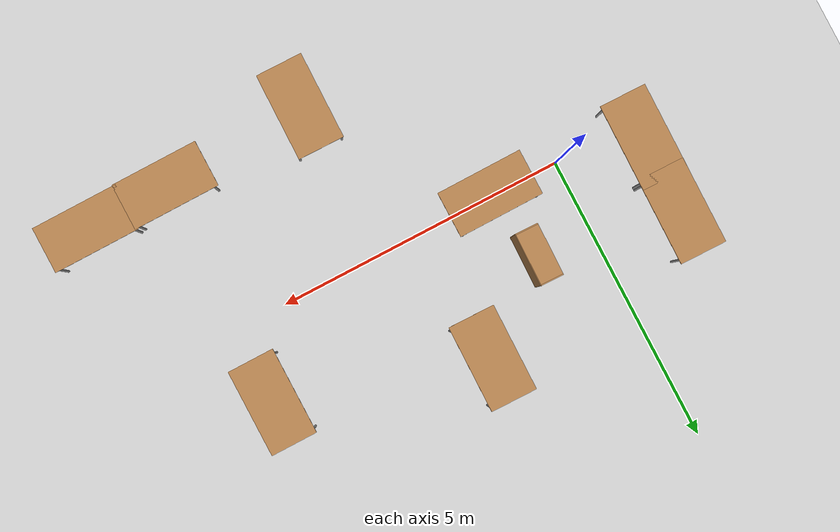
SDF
<sdf version="1.6">
 <world name="default">
  <light name="sun" type="directional">
   <pose>0 0 10 0 -0 0</pose>
   <diffuse>0.8 0.8 0.8 1</diffuse>
   <specular>0.2 0.2 0.2 1</specular>
   <attenuation>
    <range>1000</range>
    <constant>0.9</constant>
    <linear>0.01</linear>
    <quadratic>0.001</quadratic>
   </attenuation>
   <direction>-0.5 0.1 -0.9</direction>
  </light>
  <model name="ground_plane">
   <static>1</static>
   <link name="link">
    <collision name="collision">
     <geometry><plane><normal>0 0 1</normal><size>100 100</size></plane></geometry>
     <surface><friction><ode><mu>100</mu><mu2>50</mu2></ode></friction></surface>
    </collision>
    <visual name="visual">
     <cast_shadows>0</cast_shadows>
     <geometry><plane><normal>0 0 1</normal><size>100 100</size></plane></geometry>
     <material>
      <script><uri>file://media/materials/scripts/gazebo.material</uri><name>Gazebo/Grey</name></script>
     </material>
    </visual>
   </link>
  </model>
  <gravity>0 0 -9.8</gravity>
  <magnetic_field>6e-06 2.3e-05 -4.2e-05</magnetic_field>
  <atmosphere type="adiabatic"/>
  <physics name="default_physics" default="0" type="ode">
   <max_step_size>0.001</max_step_size>
   <real_time_factor>1</real_time_factor>
   <real_time_update_rate>1000</real_time_update_rate>
  </physics>
  <scene><ambient>0.4 0.4 0.4 1</ambient><background>0.7 0.7 0.7 1</background><shadows>1</shadows></scene>
  <spherical_coordinates>
   <surface_model>EARTH_WGS84</surface_model>
   <latitude_deg>0</latitude_deg>
   <longitude_deg>0</longitude_deg>
   <elevation>0</elevation>
   <heading_deg>0</heading_deg>
  </spherical_coordinates>
  <model name="table">
   <static>1</static>
   <link name="link">
    <collision name="surface">
     <pose>0 0 1 0 -0 0</pose>
     <geometry><box><size>1.5 0.8 0.03</size></box></geometry>
     <surface><friction><ode><mu>0.6</mu><mu2>0.6</mu2></ode></friction></surface>
    </collision>
    <visual name="visual1">
     <pose>0 0 1 0 -0 0</pose>
     <geometry><box><size>1.5 0.8 0.03</size></box></geometry>
     <material>
      <script><uri>file://media/materials/scripts/gazebo.material</uri><name>Gazebo/Wood</name></script>
     </material>
    </visual>
    <collision name="front_left_leg">
     <pose>0.68 0.38 0.5 0 -0 0</pose>
     <geometry><cylinder><radius>0.02</radius><length>1</length></cylinder></geometry>
    </collision>
    <visual name="front_left_leg">
     <pose>0.68 0.38 0.5 0 -0 0</pose>
     <geometry><cylinder><radius>0.02</radius><length>1</length></cylinder></geometry>
     <material>
      <script><uri>file://media/materials/scripts/gazebo.material</uri><name>Gazebo/Grey</name></script>
     </material>
    </visual>
    <collision name="front_right_leg">
     <pose>0.68 -0.38 0.5 0 -0 0</pose>
     <geometry><cylinder><radius>0.02</radius><length>1</length></cylinder></geometry>
    </collision>
    <visual name="front_right_leg">
     <pose>0.68 -0.38 0.5 0 -0 0</pose>
     <geometry><cylinder><radius>0.02</radius><length>1</length></cylinder></geometry>
     <material>
      <script><uri>file://media/materials/scripts/gazebo.material</uri><name>Gazebo/Grey</name></script>
     </material>
    </visual>
    <collision name="back_right_leg">
     <pose>-0.68 -0.38 0.5 0 -0 0</pose>
     <geometry><cylinder><radius>0.02</radius><length>1</length></cylinder></geometry>
    </collision>
    <visual name="back_right_leg">
     <pose>-0.68 -0.38 0.5 0 -0 0</pose>
     <geometry><cylinder><radius>0.02</radius><length>1</length></cylinder></geometry>
     <material>
      <script><uri>file://media/materials/scripts/gazebo.material</uri><name>Gazebo/Grey</name></script>
     </material>
    </visual>
    <collision name="back_left_leg">
     <pose>-0.68 0.38 0.5 0 -0 0</pose>
     <geometry><cylinder><radius>0.02</radius><length>1</length></cylinder></geometry>
    </collision>
    <visual name="back_left_leg">
     <pose>-0.68 0.38 0.5 0 -0 0</pose>
     <geometry><cylinder><radius>0.02</radius><length>1</length></cylinder></geometry>
     <material>
      <script><uri>file://media/materials/scripts/gazebo.material</uri><name>Gazebo/Grey</name></script>
     </material>
    </visual>
   </link>
   <pose>-1.33827 0.322435 0 0 0 -1.58073</pose>
  </model>
  <model name="table_clone">
   <static>1</static>
   <link name="link">
    <collision name="surface">
     <pose>0 0 1 0 -0 0</pose>
     <geometry><box><size>1.5 0.8 0.03</size></box></geometry>
     <surface><friction><ode><mu>0.6</mu><mu2>0.6</mu2></ode></friction></surface>
    </collision>
    <visual name="visual1">
     <pose>0 0 1 0 -0 0</pose>
     <geometry><box><size>1.5 0.8 0.03</size></box></geometry>
     <material>
      <script><uri>file://media/materials/scripts/gazebo.material</uri><name>Gazebo/Wood</name></script>
     </material>
    </visual>
    <collision name="front_left_leg">
     <pose>0.68 0.38 0.5 0 -0 0</pose>
     <geometry><cylinder><radius>0.02</radius><length>1</length></cylinder></geometry>
    </collision>
    <visual name="front_left_leg">
     <pose>0.68 0.38 0.5 0 -0 0</pose>
     <geometry><cylinder><radius>0.02</radius><length>1</length></cylinder></geometry>
     <material>
      <script><uri>file://media/materials/scripts/gazebo.material</uri><name>Gazebo/Grey</name></script>
     </material>
    </visual>
    <collision name="front_right_leg">
     <pose>0.68 -0.38 0.5 0 -0 0</pose>
     <geometry><cylinder><radius>0.02</radius><length>1</length></cylinder></geometry>
    </collision>
    <visual name="front_right_leg">
     <pose>0.68 -0.38 0.5 0 -0 0</pose>
     <geometry><cylinder><radius>0.02</radius><length>1</length></cylinder></geometry>
     <material>
      <script><uri>file://media/materials/scripts/gazebo.material</uri><name>Gazebo/Grey</name></script>
     </material>
    </visual>
    <collision name="back_right_leg">
     <pose>-0.68 -0.38 0.5 0 -0 0</pose>
     <geometry><cylinder><radius>0.02</radius><length>1</length></cylinder></geometry>
    </collision>
    <visual name="back_right_leg">
     <pose>-0.68 -0.38 0.5 0 -0 0</pose>
     <geometry><cylinder><radius>0.02</radius><length>1</length></cylinder></geometry>
     <material>
      <script><uri>file://media/materials/scripts/gazebo.material</uri><name>Gazebo/Grey</name></script>
     </material>
    </visual>
    <collision name="back_left_leg">
     <pose>-0.68 0.38 0.5 0 -0 0</pose>
     <geometry><cylinder><radius>0.02</radius><length>1</length></cylinder></geometry>
    </collision>
    <visual name="back_left_leg">
     <pose>-0.68 0.38 0.5 0 -0 0</pose>
     <geometry><cylinder><radius>0.02</radius><length>1</length></cylinder></geometry>
     <material>
      <script><uri>file://media/materials/scripts/gazebo.material</uri><name>Gazebo/Grey</name></script>
     </material>
    </visual>
   </link>
   <pose>-1.32325 1.64119 0 0 0 -1.58073</pose>
  </model>
  <model name="table_clone_0">
   <static>1</static>
   <link name="link">
    <collision name="surface">
     <pose>0 0 1 0 -0 0</pose>
     <geometry><box><size>1.5 0.8 0.03</size></box></geometry>
     <surface><friction><ode><mu>0.6</mu><mu2>0.6</mu2></ode></friction></surface>
    </collision>
    <visual name="visual1">
     <pose>0 0 1 0 -0 0</pose>
     <geometry><box><size>1.5 0.8 0.03</size></box></geometry>
     <material>
      <script><uri>file://media/materials/scripts/gazebo.material</uri><name>Gazebo/Wood</name></script>
     </material>
    </visual>
    <collision name="front_left_leg">
     <pose>0.68 0.38 0.5 0 -0 0</pose>
     <geometry><cylinder><radius>0.02</radius><length>1</length></cylinder></geometry>
    </collision>
    <visual name="front_left_leg">
     <pose>0.68 0.38 0.5 0 -0 0</pose>
     <geometry><cylinder><radius>0.02</radius><length>1</length></cylinder></geometry>
     <material>
      <script><uri>file://media/materials/scripts/gazebo.material</uri><name>Gazebo/Grey</name></script>
     </material>
    </visual>
    <collision name="front_right_leg">
     <pose>0.68 -0.38 0.5 0 -0 0</pose>
     <geometry><cylinder><radius>0.02</radius><length>1</length></cylinder></geometry>
    </collision>
    <visual name="front_right_leg">
     <pose>0.68 -0.38 0.5 0 -0 0</pose>
     <geometry><cylinder><radius>0.02</radius><length>1</length></cylinder></geometry>
     <material>
      <script><uri>file://media/materials/scripts/gazebo.material</uri><name>Gazebo/Grey</name></script>
     </material>
    </visual>
    <collision name="back_right_leg">
     <pose>-0.68 -0.38 0.5 0 -0 0</pose>
     <geometry><cylinder><radius>0.02</radius><length>1</length></cylinder></geometry>
    </collision>
    <visual name="back_right_leg">
     <pose>-0.68 -0.38 0.5 0 -0 0</pose>
     <geometry><cylinder><radius>0.02</radius><length>1</length></cylinder></geometry>
     <material>
      <script><uri>file://media/materials/scripts/gazebo.material</uri><name>Gazebo/Grey</name></script>
     </material>
    </visual>
    <collision name="back_left_leg">
     <pose>-0.68 0.38 0.5 0 -0 0</pose>
     <geometry><cylinder><radius>0.02</radius><length>1</length></cylinder></geometry>
    </collision>
    <visual name="back_left_leg">
     <pose>-0.68 0.38 0.5 0 -0 0</pose>
     <geometry><cylinder><radius>0.02</radius><length>1</length></cylinder></geometry>
     <material>
      <script><uri>file://media/materials/scripts/gazebo.material</uri><name>Gazebo/Grey</name></script>
     </material>
    </visual>
   </link>
   <pose>1.20801 -0.040679 -0.518577 0 0 -3.13587</pose>
  </model>
  <model name="table_clone_0_clone">
   <static>1</static>
   <link name="link">
    <collision name="surface">
     <pose>0 0 1 0 -0 0</pose>
     <geometry><box><size>1.5 0.8 0.03</size></box></geometry>
     <surface><friction><ode><mu>0.6</mu><mu2>0.6</mu2></ode></friction></surface>
    </collision>
    <visual name="visual1">
     <pose>0 0 1 0 -0 0</pose>
     <geometry><box><size>1.5 0.8 0.03</size></box></geometry>
     <material>
      <script><uri>file://media/materials/scripts/gazebo.material</uri><name>Gazebo/Wood</name></script>
     </material>
    </visual>
    <collision name="front_left_leg">
     <pose>0.68 0.38 0.5 0 -0 0</pose>
     <geometry><cylinder><radius>0.02</radius><length>1</length></cylinder></geometry>
    </collision>
    <visual name="front_left_leg">
     <pose>0.68 0.38 0.5 0 -0 0</pose>
     <geometry><cylinder><radius>0.02</radius><length>1</length></cylinder></geometry>
     <material>
      <script><uri>file://media/materials/scripts/gazebo.material</uri><name>Gazebo/Grey</name></script>
     </material>
    </visual>
    <collision name="front_right_leg">
     <pose>0.68 -0.38 0.5 0 -0 0</pose>
     <geometry><cylinder><radius>0.02</radius><length>1</length></cylinder></geometry>
    </collision>
    <visual name="front_right_leg">
     <pose>0.68 -0.38 0.5 0 -0 0</pose>
     <geometry><cylinder><radius>0.02</radius><length>1</length></cylinder></geometry>
     <material>
      <script><uri>file://media/materials/scripts/gazebo.material</uri><name>Gazebo/Grey</name></script>
     </material>
    </visual>
    <collision name="back_right_leg">
     <pose>-0.68 -0.38 0.5 0 -0 0</pose>
     <geometry><cylinder><radius>0.02</radius><length>1</length></cylinder></geometry>
    </collision>
    <visual name="back_right_leg">
     <pose>-0.68 -0.38 0.5 0 -0 0</pose>
     <geometry><cylinder><radius>0.02</radius><length>1</length></cylinder></geometry>
     <material>
      <script><uri>file://media/materials/scripts/gazebo.material</uri><name>Gazebo/Grey</name></script>
     </material>
    </visual>
    <collision name="back_left_leg">
     <pose>-0.68 0.38 0.5 0 -0 0</pose>
     <geometry><cylinder><radius>0.02</radius><length>1</length></cylinder></geometry>
    </collision>
    <visual name="back_left_leg">
     <pose>-0.68 0.38 0.5 0 -0 0</pose>
     <geometry><cylinder><radius>0.02</radius><length>1</length></cylinder></geometry>
     <material>
      <script><uri>file://media/materials/scripts/gazebo.material</uri><name>Gazebo/Grey</name></script>
     </material>
    </visual>
   </link>
   <pose>5.85461 1.30553 0 0 -0 1.57373</pose>
  </model>
  <model name="table_clone_0_clone_0">
   <static>1</static>
   <link name="link">
    <collision name="surface">
     <pose>0 0 1 0 -0 0</pose>
     <geometry><box><size>1.5 0.8 0.03</size></box></geometry>
     <surface><friction><ode><mu>0.6</mu><mu2>0.6</mu2></ode></friction></surface>
    </collision>
    <visual name="visual1">
     <pose>0 0 1 0 -0 0</pose>
     <geometry><box><size>1.5 0.8 0.03</size></box></geometry>
     <material>
      <script><uri>file://media/materials/scripts/gazebo.material</uri><name>Gazebo/Wood</name></script>
     </material>
    </visual>
    <collision name="front_left_leg">
     <pose>0.68 0.38 0.5 0 -0 0</pose>
     <geometry><cylinder><radius>0.02</radius><length>1</length></cylinder></geometry>
    </collision>
    <visual name="front_left_leg">
     <pose>0.68 0.38 0.5 0 -0 0</pose>
     <geometry><cylinder><radius>0.02</radius><length>1</length></cylinder></geometry>
     <material>
      <script><uri>file://media/materials/scripts/gazebo.material</uri><name>Gazebo/Grey</name></script>
     </material>
    </visual>
    <collision name="front_right_leg">
     <pose>0.68 -0.38 0.5 0 -0 0</pose>
     <geometry><cylinder><radius>0.02</radius><length>1</length></cylinder></geometry>
    </collision>
    <visual name="front_right_leg">
     <pose>0.68 -0.38 0.5 0 -0 0</pose>
     <geometry><cylinder><radius>0.02</radius><length>1</length></cylinder></geometry>
     <material>
      <script><uri>file://media/materials/scripts/gazebo.material</uri><name>Gazebo/Grey</name></script>
     </material>
    </visual>
    <collision name="back_right_leg">
     <pose>-0.68 -0.38 0.5 0 -0 0</pose>
     <geometry><cylinder><radius>0.02</radius><length>1</length></cylinder></geometry>
    </collision>
    <visual name="back_right_leg">
     <pose>-0.68 -0.38 0.5 0 -0 0</pose>
     <geometry><cylinder><radius>0.02</radius><length>1</length></cylinder></geometry>
     <material>
      <script><uri>file://media/materials/scripts/gazebo.material</uri><name>Gazebo/Grey</name></script>
     </material>
    </visual>
    <collision name="back_left_leg">
     <pose>-0.68 0.38 0.5 0 -0 0</pose>
     <geometry><cylinder><radius>0.02</radius><length>1</length></cylinder></geometry>
    </collision>
    <visual name="back_left_leg">
     <pose>-0.68 0.38 0.5 0 -0 0</pose>
     <geometry><cylinder><radius>0.02</radius><length>1</length></cylinder></geometry>
     <material>
      <script><uri>file://media/materials/scripts/gazebo.material</uri><name>Gazebo/Grey</name></script>
     </material>
    </visual>
   </link>
   <pose>5.76753 -2.54254 0 0 0 -3.13587</pose>
  </model>
  <model name="table_clone_0_clone_0_clone">
   <static>1</static>
   <link name="link">
    <collision name="surface">
     <pose>0 0 1 0 -0 0</pose>
     <geometry><box><size>1.5 0.8 0.03</size></box></geometry>
     <surface><friction><ode><mu>0.6</mu><mu2>0.6</mu2></ode></friction></surface>
    </collision>
    <visual name="visual1">
     <pose>0 0 1 0 -0 0</pose>
     <geometry><box><size>1.5 0.8 0.03</size></box></geometry>
     <material>
      <script><uri>file://media/materials/scripts/gazebo.material</uri><name>Gazebo/Wood</name></script>
     </material>
    </visual>
    <collision name="front_left_leg">
     <pose>0.68 0.38 0.5 0 -0 0</pose>
     <geometry><cylinder><radius>0.02</radius><length>1</length></cylinder></geometry>
    </collision>
    <visual name="front_left_leg">
     <pose>0.68 0.38 0.5 0 -0 0</pose>
     <geometry><cylinder><radius>0.02</radius><length>1</length></cylinder></geometry>
     <material>
      <script><uri>file://media/materials/scripts/gazebo.material</uri><name>Gazebo/Grey</name></script>
     </material>
    </visual>
    <collision name="front_right_leg">
     <pose>0.68 -0.38 0.5 0 -0 0</pose>
     <geometry><cylinder><radius>0.02</radius><length>1</length></cylinder></geometry>
    </collision>
    <visual name="front_right_leg">
     <pose>0.68 -0.38 0.5 0 -0 0</pose>
     <geometry><cylinder><radius>0.02</radius><length>1</length></cylinder></geometry>
     <material>
      <script><uri>file://media/materials/scripts/gazebo.material</uri><name>Gazebo/Grey</name></script>
     </material>
    </visual>
    <collision name="back_right_leg">
     <pose>-0.68 -0.38 0.5 0 -0 0</pose>
     <geometry><cylinder><radius>0.02</radius><length>1</length></cylinder></geometry>
    </collision>
    <visual name="back_right_leg">
     <pose>-0.68 -0.38 0.5 0 -0 0</pose>
     <geometry><cylinder><radius>0.02</radius><length>1</length></cylinder></geometry>
     <material>
      <script><uri>file://media/materials/scripts/gazebo.material</uri><name>Gazebo/Grey</name></script>
     </material>
    </visual>
    <collision name="back_left_leg">
     <pose>-0.68 0.38 0.5 0 -0 0</pose>
     <geometry><cylinder><radius>0.02</radius><length>1</length></cylinder></geometry>
    </collision>
    <visual name="back_left_leg">
     <pose>-0.68 0.38 0.5 0 -0 0</pose>
     <geometry><cylinder><radius>0.02</radius><length>1</length></cylinder></geometry>
     <material>
      <script><uri>file://media/materials/scripts/gazebo.material</uri><name>Gazebo/Grey</name></script>
     </material>
    </visual>
   </link>
   <pose>7.20338 -2.51858 0 0 0 -3.13587</pose>
  </model>
  <model name="table_clone_1">
   <static>1</static>
   <link name="link">
    <collision name="surface">
     <pose>0 0 1 0 -0 0</pose>
     <geometry><box><size>1.5 0.8 0.03</size></box></geometry>
     <surface><friction><ode><mu>0.6</mu><mu2>0.6</mu2></ode></friction></surface>
    </collision>
    <visual name="visual1">
     <pose>0 0 1 0 -0 0</pose>
     <geometry><box><size>1.5 0.8 0.03</size></box></geometry>
     <material>
      <script><uri>file://media/materials/scripts/gazebo.material</uri><name>Gazebo/Wood</name></script>
     </material>
    </visual>
    <collision name="front_left_leg">
     <pose>0.68 0.38 0.5 0 -0 0</pose>
     <geometry><cylinder><radius>0.02</radius><length>1</length></cylinder></geometry>
    </collision>
    <visual name="front_left_leg">
     <pose>0.68 0.38 0.5 0 -0 0</pose>
     <geometry><cylinder><radius>0.02</radius><length>1</length></cylinder></geometry>
     <material>
      <script><uri>file://media/materials/scripts/gazebo.material</uri><name>Gazebo/Grey</name></script>
     </material>
    </visual>
    <collision name="front_right_leg">
     <pose>0.68 -0.38 0.5 0 -0 0</pose>
     <geometry><cylinder><radius>0.02</radius><length>1</length></cylinder></geometry>
    </collision>
    <visual name="front_right_leg">
     <pose>0.68 -0.38 0.5 0 -0 0</pose>
     <geometry><cylinder><radius>0.02</radius><length>1</length></cylinder></geometry>
     <material>
      <script><uri>file://media/materials/scripts/gazebo.material</uri><name>Gazebo/Grey</name></script>
     </material>
    </visual>
    <collision name="back_right_leg">
     <pose>-0.68 -0.38 0.5 0 -0 0</pose>
     <geometry><cylinder><radius>0.02</radius><length>1</length></cylinder></geometry>
    </collision>
    <visual name="back_right_leg">
     <pose>-0.68 -0.38 0.5 0 -0 0</pose>
     <geometry><cylinder><radius>0.02</radius><length>1</length></cylinder></geometry>
     <material>
      <script><uri>file://media/materials/scripts/gazebo.material</uri><name>Gazebo/Grey</name></script>
     </material>
    </visual>
    <collision name="back_left_leg">
     <pose>-0.68 0.38 0.5 0 -0 0</pose>
     <geometry><cylinder><radius>0.02</radius><length>1</length></cylinder></geometry>
    </collision>
    <visual name="back_left_leg">
     <pose>-0.68 0.38 0.5 0 -0 0</pose>
     <geometry><cylinder><radius>0.02</radius><length>1</length></cylinder></geometry>
     <material>
      <script><uri>file://media/materials/scripts/gazebo.material</uri><name>Gazebo/Grey</name></script>
     </material>
    </visual>
   </link>
   <pose>3.28341 -2.66037 0 0 0 -1.58073</pose>
  </model>
  <model name="table_clone_2">
   <static>1</static>
   <link name="link">
    <collision name="surface">
     <pose>0 0 1 0 -0 0</pose>
     <geometry><box><size>1.5 0.8 0.03</size></box></geometry>
     <surface><friction><ode><mu>0.6</mu><mu2>0.6</mu2></ode></friction></surface>
    </collision>
    <visual name="visual1">
     <pose>0 0 1 0 -0 0</pose>
     <geometry><box><size>1.5 0.8 0.03</size></box></geometry>
     <material>
      <script><uri>file://media/materials/scripts/gazebo.material</uri><name>Gazebo/Wood</name></script>
     </material>
    </visual>
    <collision name="front_left_leg">
     <pose>0.68 0.38 0.5 0 -0 0</pose>
     <geometry><cylinder><radius>0.02</radius><length>1</length></cylinder></geometry>
    </collision>
    <visual name="front_left_leg">
     <pose>0.68 0.38 0.5 0 -0 0</pose>
     <geometry><cylinder><radius>0.02</radius><length>1</length></cylinder></geometry>
     <material>
      <script><uri>file://media/materials/scripts/gazebo.material</uri><name>Gazebo/Grey</name></script>
     </material>
    </visual>
    <collision name="front_right_leg">
     <pose>0.68 -0.38 0.5 0 -0 0</pose>
     <geometry><cylinder><radius>0.02</radius><length>1</length></cylinder></geometry>
    </collision>
    <visual name="front_right_leg">
     <pose>0.68 -0.38 0.5 0 -0 0</pose>
     <geometry><cylinder><radius>0.02</radius><length>1</length></cylinder></geometry>
     <material>
      <script><uri>file://media/materials/scripts/gazebo.material</uri><name>Gazebo/Grey</name></script>
     </material>
    </visual>
    <collision name="back_right_leg">
     <pose>-0.68 -0.38 0.5 0 -0 0</pose>
     <geometry><cylinder><radius>0.02</radius><length>1</length></cylinder></geometry>
    </collision>
    <visual name="back_right_leg">
     <pose>-0.68 -0.38 0.5 0 -0 0</pose>
     <geometry><cylinder><radius>0.02</radius><length>1</length></cylinder></geometry>
     <material>
      <script><uri>file://media/materials/scripts/gazebo.material</uri><name>Gazebo/Grey</name></script>
     </material>
    </visual>
    <collision name="back_left_leg">
     <pose>-0.68 0.38 0.5 0 -0 0</pose>
     <geometry><cylinder><radius>0.02</radius><length>1</length></cylinder></geometry>
    </collision>
    <visual name="back_left_leg">
     <pose>-0.68 0.38 0.5 0 -0 0</pose>
     <geometry><cylinder><radius>0.02</radius><length>1</length></cylinder></geometry>
     <material>
      <script><uri>file://media/materials/scripts/gazebo.material</uri><name>Gazebo/Grey</name></script>
     </material>
    </visual>
   </link>
   <pose>2.43494 2.31407 0 0 0 -1.58073</pose>
  </model>
  <model name="bookshelf">
   <static>1</static>
   <link name="link">
    <inertial><mass>1</mass></inertial>
    <collision name="back">
     <pose>0 0.005 0.6 0 -0 0</pose>
     <geometry><box><size>0.9 0.01 1.2</size></box></geometry>
    </collision>
    <visual name="visual1">
     <pose>0 0.005 0.6 0 -0 0</pose>
     <geometry><box><size>0.9 0.01 1.2</size></box></geometry>
     <material>
      <script><uri>file://media/materials/scripts/gazebo.material</uri><name>Gazebo/Wood</name></script>
     </material>
    </visual>
    <collision name="left_side">
     <pose>0.45 -0.195 0.6 0 -0 0</pose>
     <geometry><box><size>0.02 0.4 1.2</size></box></geometry>
    </collision>
    <visual name="visual2">
     <pose>0.45 -0.195 0.6 0 -0 0</pose>
     <geometry><box><size>0.02 0.4 1.2</size></box></geometry>
     <material>
      <script><uri>file://media/materials/scripts/gazebo.material</uri><name>Gazebo/Wood</name></script>
     </material>
    </visual>
    <collision name="right_side">
     <pose>-0.45 -0.195 0.6 0 -0 0</pose>
     <geometry><box><size>0.02 0.4 1.2</size></box></geometry>
    </collision>
    <visual name="visual3">
     <pose>-0.45 -0.195 0.6 0 -0 0</pose>
     <geometry><box><size>0.02 0.4 1.2</size></box></geometry>
     <material>
      <script><uri>file://media/materials/scripts/gazebo.material</uri><name>Gazebo/Wood</name></script>
     </material>
    </visual>
    <collision name="bottom">
     <pose>0 -0.195 0.03 0 -0 0</pose>
     <geometry><box><size>0.88 0.4 0.06</size></box></geometry>
    </collision>
    <visual name="visual4">
     <pose>0 -0.195 0.03 0 -0 0</pose>
     <geometry><box><size>0.88 0.4 0.06</size></box></geometry>
     <material>
      <script><uri>file://media/materials/scripts/gazebo.material</uri><name>Gazebo/Wood</name></script>
     </material>
    </visual>
    <collision name="top">
     <pose>0 -0.195 1.19 0 -0 0</pose>
     <geometry><box><size>0.88 0.4 0.02</size></box></geometry>
    </collision>
    <visual name="visual5">
     <pose>0 -0.195 1.19 0 -0 0</pose>
     <geometry><box><size>0.88 0.4 0.02</size></box></geometry>
     <material>
      <script><uri>file://media/materials/scripts/gazebo.material</uri><name>Gazebo/Wood</name></script>
     </material>
    </visual>
    <collision name="low_shelf">
     <pose>0 -0.195 0.43 0 -0 0</pose>
     <geometry><box><size>0.88 0.4 0.02</size></box></geometry>
    </collision>
    <visual name="visual6">
     <pose>0 -0.195 0.43 0 -0 0</pose>
     <geometry><box><size>0.88 0.4 0.02</size></box></geometry>
     <material>
      <script><uri>file://media/materials/scripts/gazebo.material</uri><name>Gazebo/Wood</name></script>
     </material>
    </visual>
    <collision name="high_shelf">
     <pose>0 -0.195 0.8 0 -0 0</pose>
     <geometry><box><size>0.88 0.4 0.02</size></box></geometry>
    </collision>
    <visual name="visual7">
     <pose>0 -0.195 0.8 0 -0 0</pose>
     <geometry><box><size>0.88 0.4 0.02</size></box></geometry>
     <material>
      <script><uri>file://media/materials/scripts/gazebo.material</uri><name>Gazebo/Wood</name></script>
     </material>
    </visual>
   </link>
   <pose>1.21889 1.19547 -0 0 0 -1.58933</pose>
  </model>
 </world>
</sdf>
